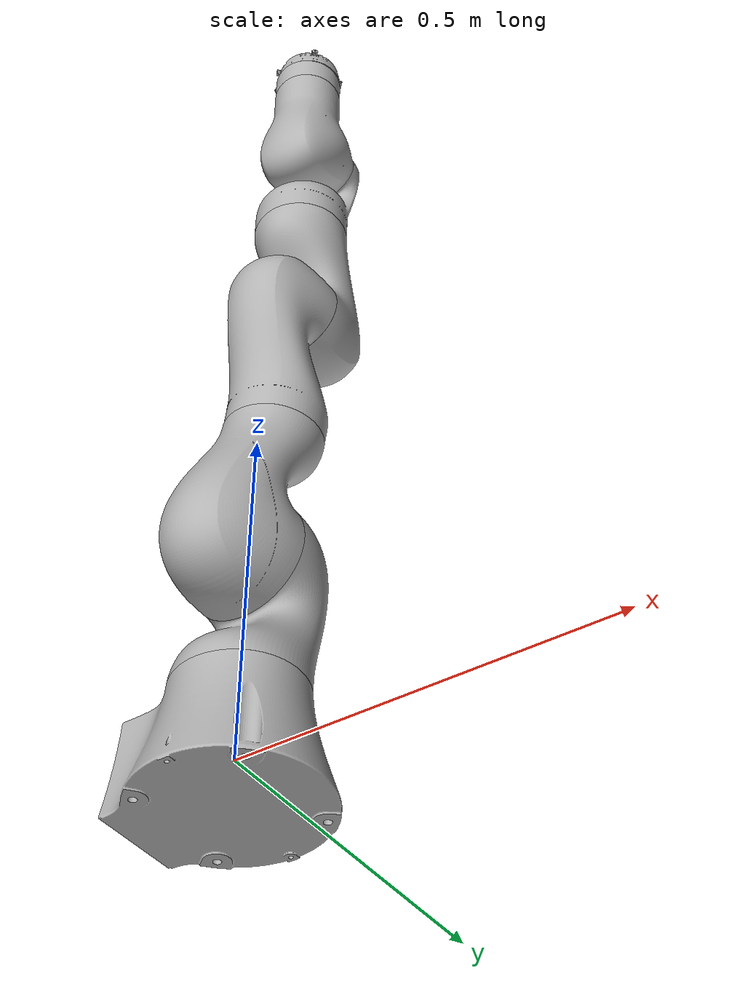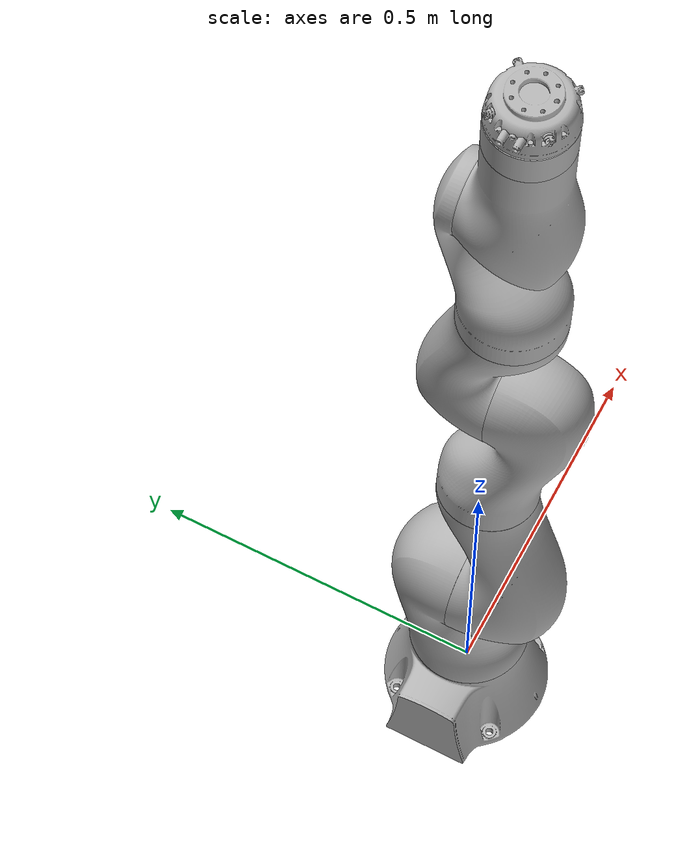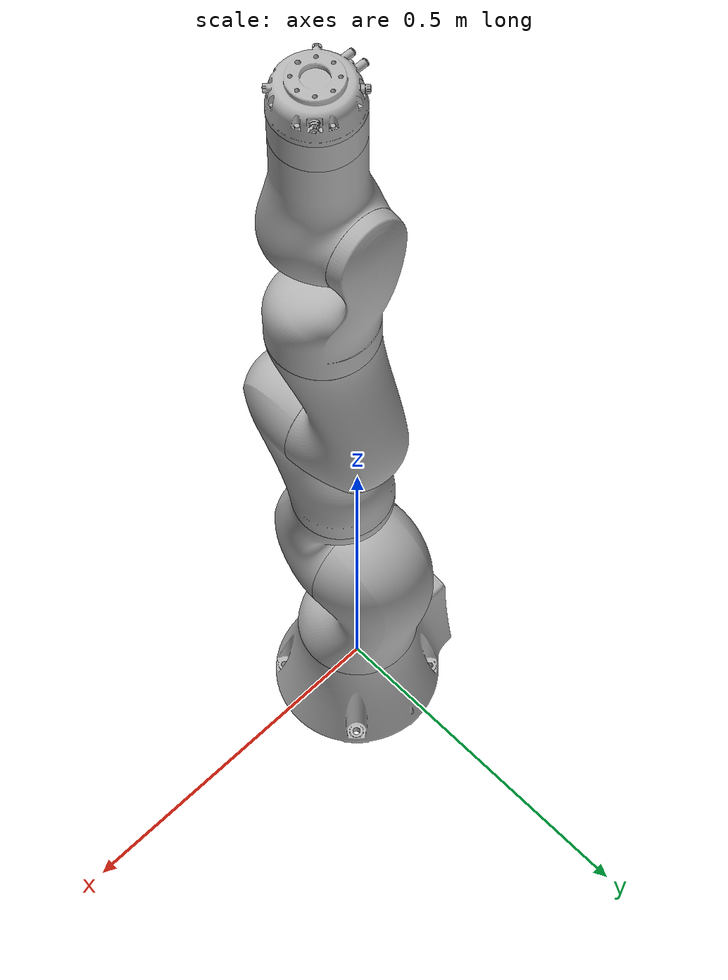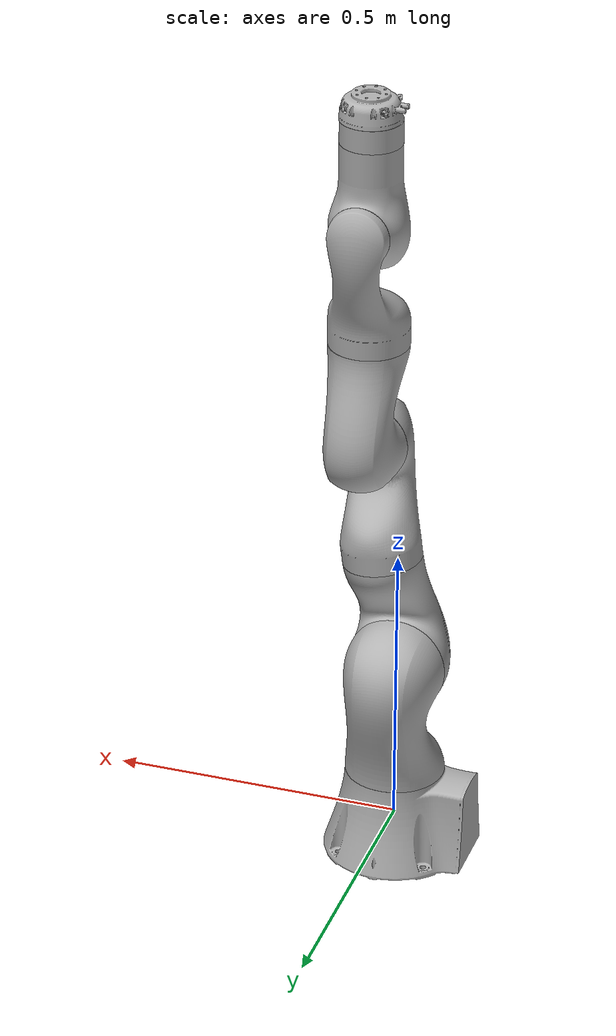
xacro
<?xml version="1.0" ?>
<robot name="kuka_iiwa" xmlns:xacro="http://www.ros.org/wiki/xacro">

<xacro:include filename="$(find kuka_iiwa_description)/urdf/materials.xacro" />
<xacro:include filename="$(find kuka_iiwa_description)/urdf/kuka_iiwa.trans" />
<xacro:include filename="$(find kuka_iiwa_description)/urdf/kuka_iiwa.gazebo" />

<link name="base_link">
  <inertial>
    <origin xyz="-0.012820903814013492 0.0051115182659933955 0.0663962675807908" rpy="0 0 0"/>
    <mass value="42.988933075786555"/>
    <inertia ixx="0.190409" iyy="0.262819" izz="0.242056" ixy="0.005311" iyz="0.0" ixz="0.0"/>
  </inertial>
  <visual>
    <origin xyz="0 0.066396 0" rpy="1.57 0 0"/>
    <geometry>
      <mesh filename="package://kuka_iiwa_description/meshes/base_link.stl" scale="0.001 0.001 0.001"/>
    </geometry>
    <material name="silver"/>
  </visual>
  <collision>
    <origin xyz="0 0.066396 0" rpy="0 0 0"/>
    <geometry>
      <mesh filename="package://kuka_iiwa_description/meshes/base_link.stl" scale="0.001 0.001 0.001"/>
    </geometry>
  </collision>
</link>

<link name="link1_1">
  <inertial>
    <origin xyz="0.000513388107313499 0.13240338561657816 -0.03379169086163242" rpy="0 0 0"/>
    <mass value="32.25255782169743"/>
    <inertia ixx="0.258907" iyy="0.096765" izz="0.261201" ixy="-0.000587" iyz="0.038662" ixz="-3.5e-05"/>
  </inertial>
  <visual>
    <origin xyz="-0.0 -0.081105 -0.066396" rpy="0 0 0"/>
    <geometry>
      <mesh filename="package://kuka_iiwa_description/meshes/link1_1.stl" scale="0.001 0.001 0.001"/>
    </geometry>
    <material name="silver"/>
  </visual>
  <collision>
    <origin xyz="-0.0 -0.081105 -0.066396" rpy="0 0 0"/>
    <geometry>
      <mesh filename="package://kuka_iiwa_description/meshes/link1_1.stl" scale="0.001 0.001 0.001"/>
    </geometry>
  </collision>
</link>

<link name="link2_1">
  <inertial>
    <origin xyz="0.006790637041771156 0.05831151747503188 0.0520962364811052" rpy="0 0 0"/>
    <mass value="31.02033485964618"/>
    <inertia ixx="0.237289" iyy="0.08923" izz="0.238957" ixy="-0.020857" iyz="0.037692" ixz="0.005198"/>
  </inertial>
  <visual>
    <origin xyz="-0.000152 -0.293605 -0.056397" rpy="0 0 0"/>
    <geometry>
      <mesh filename="package://kuka_iiwa_description/meshes/link2_1.stl" scale="0.001 0.001 0.001"/>
    </geometry>
    <material name="silver"/>
  </visual>
  <collision>
    <origin xyz="-0.000152 -0.293605 -0.056397" rpy="0 0 0"/>
    <geometry>
      <mesh filename="package://kuka_iiwa_description/meshes/link2_1.stl" scale="0.001 0.001 0.001"/>
    </geometry>
  </collision>
</link>

<link name="link3_1">
  <inertial>
    <origin xyz="0.01839183607817021 0.1351938119333524 0.029831502276860905" rpy="0 0 0"/>
    <mass value="24.92491724179464"/>
    <inertia ixx="0.194363" iyy="0.062404" izz="0.186753" ixy="-0.018427" iyz="-0.038158" ixz="-0.005218"/>
  </inertial>
  <visual>
    <origin xyz="-0.025571 -0.486416 -0.066784" rpy="0 0 0"/>
    <geometry>
      <mesh filename="package://kuka_iiwa_description/meshes/link3_1.stl" scale="0.001 0.001 0.001"/>
    </geometry>
    <material name="silver"/>
  </visual>
  <collision>
    <origin xyz="-0.025571 -0.486416 -0.066784" rpy="0 0 0"/>
    <geometry>
      <mesh filename="package://kuka_iiwa_description/meshes/link3_1.stl" scale="0.001 0.001 0.001"/>
    </geometry>
  </collision>
</link>

<link name="link4_1">
  <inertial>
    <origin xyz="-0.0005772979947998233 0.06759793289135263 -0.04449035667683612" rpy="0 0 0"/>
    <mass value="21.504431474954778"/>
    <inertia ixx="0.135046" iyy="0.048366" izz="0.128521" ixy="-0.000462" iyz="-0.022671" ixz="-0.00013"/>
  </inertial>
  <visual>
    <origin xyz="-0.055377 -0.709916 -0.077734" rpy="0 0 0"/>
    <geometry>
      <mesh filename="package://kuka_iiwa_description/meshes/link4_1.stl" scale="0.001 0.001 0.001"/>
    </geometry>
    <material name="silver"/>
  </visual>
  <collision>
    <origin xyz="-0.055377 -0.709916 -0.077734" rpy="0 0 0"/>
    <geometry>
      <mesh filename="package://kuka_iiwa_description/meshes/link4_1.stl" scale="0.001 0.001 0.001"/>
    </geometry>
  </collision>
</link>

<link name="link5_1">
  <inertial>
    <origin xyz="2.8597556973354588e-05 0.08555414137410255 -0.021046066685368535" rpy="0 0 0"/>
    <mass value="13.295939170769604"/>
    <inertia ixx="0.079127" iyy="0.034891" izz="0.068511" ixy="0.000187" iyz="0.024126" ixz="-8.6e-05"/>
  </inertial>
  <visual>
    <origin xyz="-0.055471 -0.884457 -0.067931" rpy="0 0 0"/>
    <geometry>
      <mesh filename="package://kuka_iiwa_description/meshes/link5_1.stl" scale="0.001 0.001 0.001"/>
    </geometry>
    <material name="silver"/>
  </visual>
  <collision>
    <origin xyz="-0.055471 -0.884457 -0.067931" rpy="0 0 0"/>
    <geometry>
      <mesh filename="package://kuka_iiwa_description/meshes/link5_1.stl" scale="0.001 0.001 0.001"/>
    </geometry>
  </collision>
</link>

<link name="link6_1">
  <inertial>
    <origin xyz="0.0007170658959562148 0.0199124845020473 0.07105460912496495" rpy="0 0 0"/>
    <mass value="17.271121217368332"/>
    <inertia ixx="0.072656" iyy="0.033094" izz="0.07103" ixy="1.9e-05" iyz="0.001862" ixz="-1.6e-05"/>
  </inertial>
  <visual>
    <origin xyz="-0.055085 -1.110238 0.001864" rpy="0 0 0"/>
    <geometry>
      <mesh filename="package://kuka_iiwa_description/meshes/link6_1.stl" scale="0.001 0.001 0.001"/>
    </geometry>
    <material name="silver"/>
  </visual>
  <collision>
    <origin xyz="-0.055085 -1.110238 0.001864" rpy="0 0 0"/>
    <geometry>
      <mesh filename="package://kuka_iiwa_description/meshes/link6_1.stl" scale="0.001 0.001 0.001"/>
    </geometry>
  </collision>
</link>

<link name="link7_1">
  <inertial>
    <origin xyz="-5.067843141224465e-05 0.07271160190383918 0.00029667254133505794" rpy="0 0 0"/>
    <mass value="3.59003708727431"/>
    <inertia ixx="0.004896" iyy="0.003889" izz="0.004895" ixy="6e-06" iyz="-5e-06" ixz="-0.0"/>
  </inertial>
  <visual>
    <origin xyz="-0.055801 -1.181054 -0.069117" rpy="0 0 0"/>
    <geometry>
      <mesh filename="package://kuka_iiwa_description/meshes/link7_1.stl" scale="0.001 0.001 0.001"/>
    </geometry>
    <material name="silver"/>
  </visual>
  <collision>
    <origin xyz="-0.055801 -1.181054 -0.069117" rpy="0 0 0"/>
    <geometry>
      <mesh filename="package://kuka_iiwa_description/meshes/link7_1.stl" scale="0.001 0.001 0.001"/>
    </geometry>
  </collision>
</link>

<link name="end_link_1">
  <inertial>
    <origin xyz="-0.00016848294005620407 0.027313835797532215 9.298551248301812e-05" rpy="0 0 0"/>
    <mass value="2.4567876231793395"/>
    <inertia ixx="0.001756" iyy="0.002723" izz="0.001778" ixy="3e-06" iyz="4e-06" ixz="1e-06"/>
  </inertial>
  <visual>
    <origin xyz="-0.057084 -1.281054 -0.069383" rpy="0 0 0"/>
    <geometry>
      <mesh filename="package://kuka_iiwa_description/meshes/end_link_1.stl" scale="0.001 0.001 0.001"/>
    </geometry>
    <material name="silver"/>
  </visual>
  <collision>
    <origin xyz="-0.057084 -1.281054 -0.069383" rpy="0 0 0"/>
    <geometry>
      <mesh filename="package://kuka_iiwa_description/meshes/end_link_1.stl" scale="0.001 0.001 0.001"/>
    </geometry>
  </collision>
</link>

<joint name="base_link__link1" type="continuous">
  <origin xyz="0.0 0 0.081105" rpy="1.57 0 0"/>
  <parent link="base_link"/>
  <child link="link1_1"/>
  <axis xyz="0.0 1.0 0.0"/>
</joint>

<joint name="link1__link2" type="continuous">
  <origin xyz="0.000152 0.2125 -0.009999" rpy="0 0 0"/>
  <parent link="link1_1"/>
  <child link="link2_1"/>
  <axis xyz="0.0 0.0 1.0"/>
</joint>

<joint name="link2__link3" type="continuous">
  <origin xyz="0.025419 0.192811 0.010387" rpy="0 0 0"/>
  <parent link="link2_1"/>
  <child link="link3_1"/>
  <axis xyz="0.0 1.0 0.0"/>
</joint>

<joint name="link3__link4" type="continuous">
  <origin xyz="0.029806 0.2235 0.01095" rpy="0 0 0"/>
  <parent link="link3_1"/>
  <child link="link4_1"/>
  <axis xyz="0.0 0.0 -1.0"/>
</joint>

<joint name="link4__link5" type="continuous">
  <origin xyz="9.4e-05 0.174541 -0.009803" rpy="0 0 0"/>
  <parent link="link4_1"/>
  <child link="link5_1"/>
  <axis xyz="0.0 1.0 0.0"/>
</joint>

<joint name="link5__link6" type="continuous">
  <origin xyz="-0.000386 0.225781 -0.069795" rpy="0 0 0"/>
  <parent link="link5_1"/>
  <child link="link6_1"/>
  <axis xyz="0.0 0.0 1.0"/>
</joint>

<joint name="link6__link7" type="prismatic">
  <origin xyz="0.000716 0.070816 0.070981" rpy="0 0 0"/>
  <parent link="link6_1"/>
  <child link="link7_1"/>
  <axis xyz="0.0 1.0 0.0"/>
  <limit upper="0.075" lower="0.0" effort="100" velocity="100"/>
</joint>

<joint name="link7__end_link" type="continuous">
  <origin xyz="0.001283 0.1 0.000266" rpy="0 0 0"/>
  <parent link="link7_1"/>
  <child link="end_link_1"/>
  <axis xyz="0.0 -1.0 0.0"/>
</joint>

</robot>

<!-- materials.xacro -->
<robot name="kuka_iiwa" xmlns:xacro="http://www.ros.org/wiki/xacro" >

<material name="silver">
  <color rgba="0.700 0.700 0.700 1.000"/>
</material>

</robot>

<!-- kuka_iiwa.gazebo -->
<robot name="kuka_iiwa" xmlns:xacro="http://www.ros.org/wiki/xacro" >

<xacro:property name="body_color" value="Gazebo/Silver" />

<gazebo>
  <plugin name="control" filename="libgazebo_ros_control.so"/>
</gazebo>
<gazebo reference="base_link">
  <material>${body_color}</material>
  <mu1>0.2</mu1>
  <mu2>0.2</mu2>
  <selfCollide>true</selfCollide>
  <gravity>true</gravity>
</gazebo>

<gazebo reference="link1_1">
  <material>${body_color}</material>
  <mu1>0.2</mu1>
  <mu2>0.2</mu2>
  <selfCollide>true</selfCollide>
</gazebo>

<gazebo reference="link2_1">
  <material>${body_color}</material>
  <mu1>0.2</mu1>
  <mu2>0.2</mu2>
  <selfCollide>true</selfCollide>
</gazebo>

<gazebo reference="link3_1">
  <material>${body_color}</material>
  <mu1>0.2</mu1>
  <mu2>0.2</mu2>
  <selfCollide>true</selfCollide>
</gazebo>

<gazebo reference="link4_1">
  <material>${body_color}</material>
  <mu1>0.2</mu1>
  <mu2>0.2</mu2>
  <selfCollide>true</selfCollide>
</gazebo>

<gazebo reference="link5_1">
  <material>${body_color}</material>
  <mu1>0.2</mu1>
  <mu2>0.2</mu2>
  <selfCollide>true</selfCollide>
</gazebo>

<gazebo reference="link6_1">
  <material>${body_color}</material>
  <mu1>0.2</mu1>
  <mu2>0.2</mu2>
  <selfCollide>true</selfCollide>
</gazebo>

<gazebo reference="link7_1">
  <material>${body_color}</material>
  <mu1>0.2</mu1>
  <mu2>0.2</mu2>
  <selfCollide>true</selfCollide>
</gazebo>

<gazebo reference="end_link_1">
  <material>${body_color}</material>
  <mu1>0.2</mu1>
  <mu2>0.2</mu2>
  <selfCollide>true</selfCollide>
</gazebo>

</robot>
